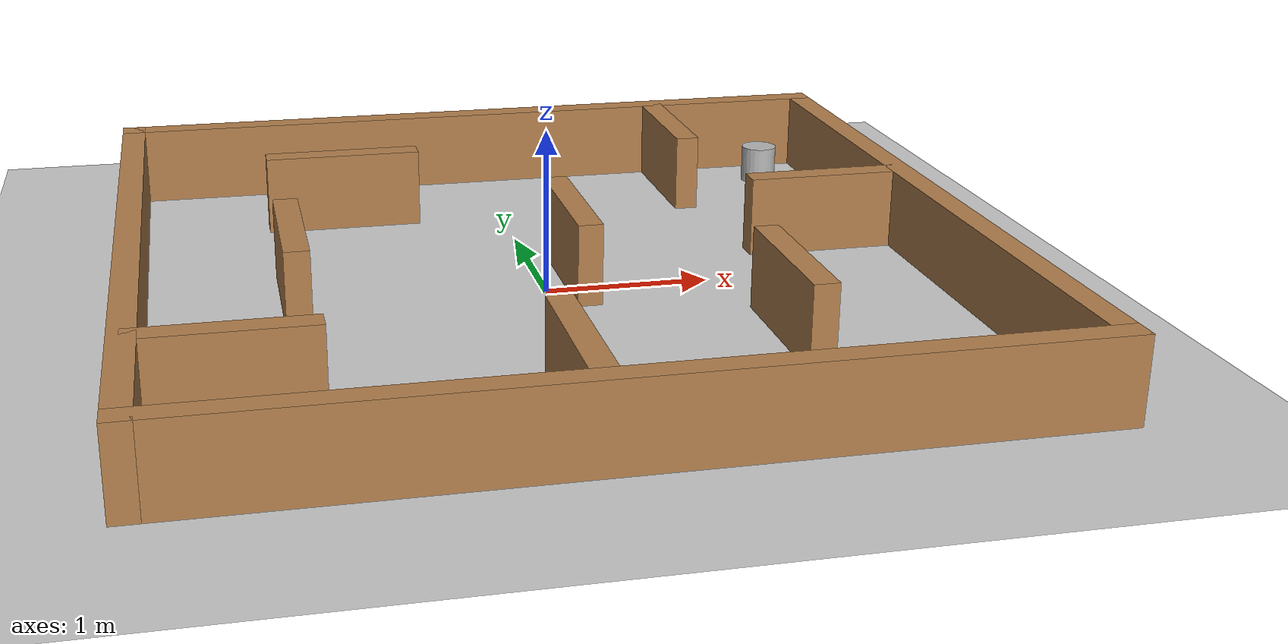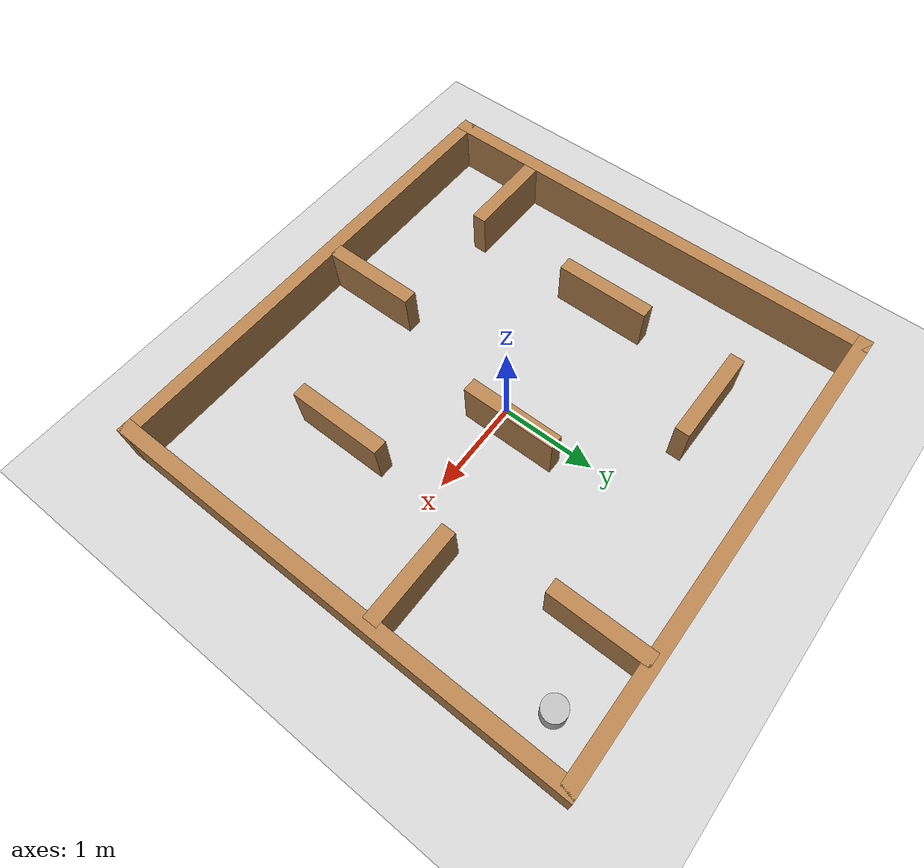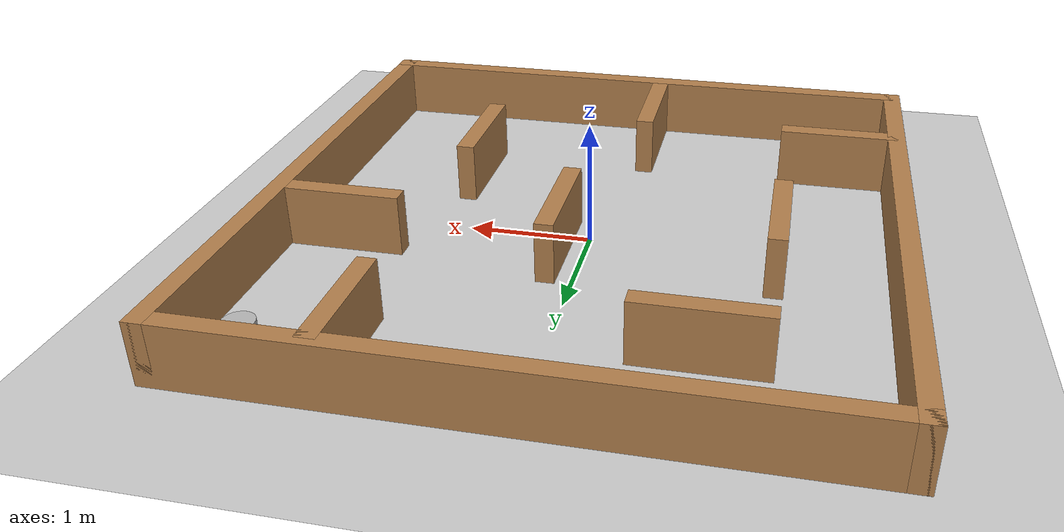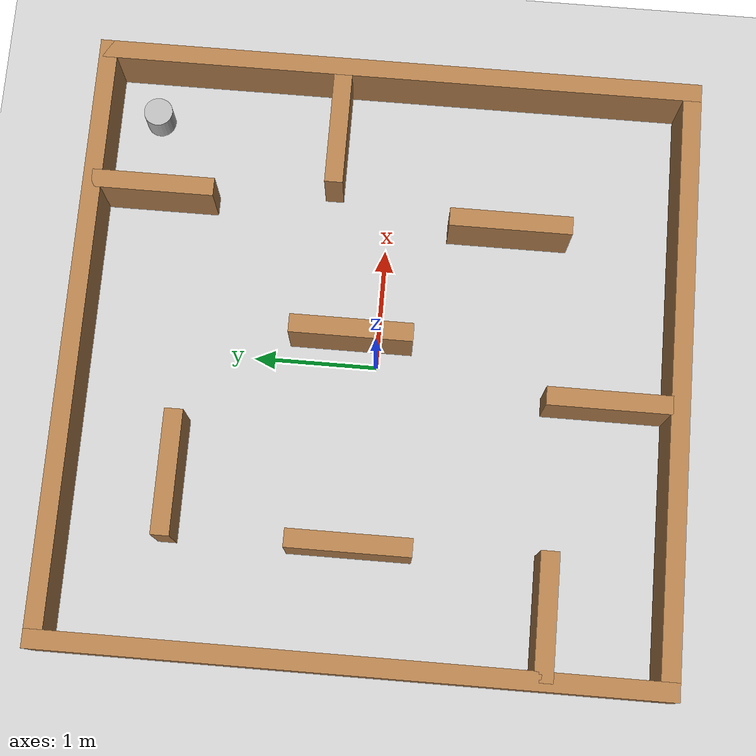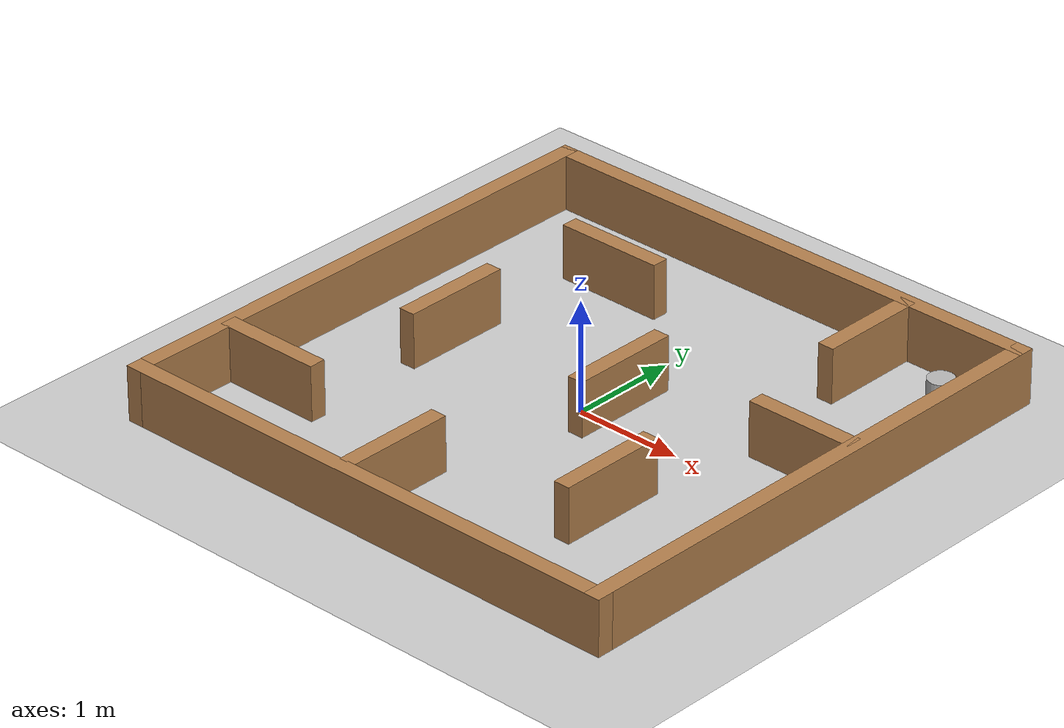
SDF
<sdf version="1.7">
 <world name="default">
  <model name="ground_plane">
   <static>1</static>
   <link name="link">
    <collision name="collision">
     <geometry><plane><normal>0 0 1</normal><size>100 100</size></plane></geometry>
     <surface>
      <contact><collide_bitmask>65535</collide_bitmask></contact>
      <friction><ode><mu>100</mu><mu2>50</mu2></ode></friction>
     </surface>
    </collision>
    <visual name="visual">
     <cast_shadows>0</cast_shadows>
     <geometry><plane><normal>0 0 1</normal><size>100 100</size></plane></geometry>
     <material>
      <script><uri>file://media/materials/scripts/gazebo.material</uri><name>Gazebo/Grey</name></script>
     </material>
    </visual>
   </link>
  </model>
  <model name="turtlebot3_plaza">
   <link name="Wall_0">
    <collision name="Wall_0_Collision">
     <geometry><box><size>5 0.15 0.5</size></box></geometry>
     <pose>0 0 0.25 0 -0 0</pose>
    </collision>
    <visual name="Wall_0_Visual">
     <pose>0 0 0.25 0 -0 0</pose>
     <geometry><box><size>5 0.15 0.5</size></box></geometry>
     <material>
      <script><uri>file://media/materials/scripts/gazebo.material</uri><name>Gazebo/Wood</name></script>
      <ambient>1 1 1 1</ambient>
     </material>
    </visual>
    <pose>-2.425 0 0 0 -0 1.5708</pose>
   </link>
   <link name="Wall_11">
    <collision name="Wall_11_Collision">
     <geometry><box><size>1 0.15 0.5</size></box></geometry>
     <pose>0 0 0.25 0 -0 0</pose>
    </collision>
    <visual name="Wall_11_Visual">
     <pose>0 0 0.25 0 -0 0</pose>
     <geometry><box><size>1 0.15 0.5</size></box></geometry>
     <material>
      <script><uri>file://media/materials/scripts/gazebo.material</uri><name>Gazebo/Wood</name></script>
      <ambient>1 1 1 1</ambient>
     </material>
    </visual>
    <pose>-1.937 -1.467 0 0 -0 0</pose>
   </link>
   <link name="Wall_13">
    <collision name="Wall_13_Collision">
     <geometry><box><size>1 0.15 0.5</size></box></geometry>
     <pose>0 0 0.25 0 -0 0</pose>
    </collision>
    <visual name="Wall_13_Visual">
     <pose>0 0 0.25 0 -0 0</pose>
     <geometry><box><size>1 0.15 0.5</size></box></geometry>
     <material>
      <script><uri>file://media/materials/scripts/gazebo.material</uri><name>Gazebo/Wood</name></script>
      <ambient>1 1 1 1</ambient>
     </material>
    </visual>
    <pose>-0.22 -1.866 0 0 0 -1.5708</pose>
   </link>
   <link name="Wall_15">
    <collision name="Wall_15_Collision">
     <geometry><box><size>1 0.15 0.5</size></box></geometry>
     <pose>0 0 0.25 0 -0 0</pose>
    </collision>
    <visual name="Wall_15_Visual">
     <pose>0 0 0.25 0 -0 0</pose>
     <geometry><box><size>1 0.15 0.5</size></box></geometry>
     <material>
      <script><uri>file://media/materials/scripts/gazebo.material</uri><name>Gazebo/Wood</name></script>
      <ambient>1 1 1 1</ambient>
     </material>
    </visual>
    <pose>1.195 -1.002 0 0 -0 1.5708</pose>
   </link>
   <link name="Wall_17">
    <collision name="Wall_17_Collision">
     <geometry><box><size>1 0.15 0.5</size></box></geometry>
     <pose>0 0 0.25 0 -0 0</pose>
    </collision>
    <visual name="Wall_17_Visual">
     <pose>0 0 0.25 0 -0 0</pose>
     <geometry><box><size>1 0.15 0.5</size></box></geometry>
     <material>
      <script><uri>file://media/materials/scripts/gazebo.material</uri><name>Gazebo/Wood</name></script>
      <ambient>1 1 1 1</ambient>
     </material>
    </visual>
    <pose>1.288 1.93 0 0 0 -1.5708</pose>
   </link>
   <link name="Wall_19">
    <collision name="Wall_19_Collision">
     <geometry><box><size>1 0.15 0.5</size></box></geometry>
     <pose>0 0 0.25 0 -0 0</pose>
    </collision>
    <visual name="Wall_19_Visual">
     <pose>0 0 0.25 0 -0 0</pose>
     <geometry><box><size>1 0.15 0.5</size></box></geometry>
     <material>
      <script><uri>file://media/materials/scripts/gazebo.material</uri><name>Gazebo/Wood</name></script>
      <ambient>1 1 1 1</ambient>
     </material>
    </visual>
    <pose>1.91128 0.4632 0 0 -0 0</pose>
   </link>
   <link name="Wall_2">
    <collision name="Wall_2_Collision">
     <geometry><box><size>5 0.15 0.5</size></box></geometry>
     <pose>0 0 0.25 0 -0 0</pose>
    </collision>
    <visual name="Wall_2_Visual">
     <pose>0 0 0.25 0 -0 0</pose>
     <geometry><box><size>5 0.15 0.5</size></box></geometry>
     <material>
      <script><uri>file://media/materials/scripts/gazebo.material</uri><name>Gazebo/Wood</name></script>
      <ambient>1 1 1 1</ambient>
     </material>
    </visual>
    <pose>0 2.425 0 0 -0 0</pose>
   </link>
   <link name="Wall_21">
    <collision name="Wall_21_Collision">
     <geometry><box><size>1 0.15 0.5</size></box></geometry>
     <pose>0 0 0.25 0 -0 0</pose>
    </collision>
    <visual name="Wall_21_Visual">
     <pose>0 0 0.25 0 -0 0</pose>
     <geometry><box><size>1 0.15 0.5</size></box></geometry>
     <material>
      <script><uri>file://media/materials/scripts/gazebo.material</uri><name>Gazebo/Wood</name></script>
      <ambient>1 1 1 1</ambient>
     </material>
    </visual>
    <pose>0.204 0.215 0 0 0 -1.5708</pose>
   </link>
   <link name="Wall_3">
    <collision name="Wall_3_Collision">
     <geometry><box><size>5 0.15 0.5</size></box></geometry>
     <pose>0 0 0.25 0 -0 0</pose>
    </collision>
    <visual name="Wall_3_Visual">
     <pose>0 0 0.25 0 -0 0</pose>
     <geometry><box><size>5 0.15 0.5</size></box></geometry>
     <material>
      <script><uri>file://media/materials/scripts/gazebo.material</uri><name>Gazebo/Wood</name></script>
      <ambient>1 1 1 1</ambient>
     </material>
    </visual>
    <pose>2.425 0 0 0 0 -1.5708</pose>
   </link>
   <link name="Wall_4">
    <collision name="Wall_4_Collision">
     <geometry><box><size>5 0.15 0.5</size></box></geometry>
     <pose>0 0 0.25 0 -0 0</pose>
    </collision>
    <visual name="Wall_4_Visual">
     <pose>0 0 0.25 0 -0 0</pose>
     <geometry><box><size>5 0.15 0.5</size></box></geometry>
     <material>
      <script><uri>file://media/materials/scripts/gazebo.material</uri><name>Gazebo/Wood</name></script>
      <ambient>1 1 1 1</ambient>
     </material>
    </visual>
    <pose>0 -2.425 0 0 -0 3.14159</pose>
   </link>
   <link name="Wall_7">
    <collision name="Wall_7_Collision">
     <geometry><box><size>1 0.15 0.5</size></box></geometry>
     <pose>0 0 0.25 0 -0 0</pose>
    </collision>
    <visual name="Wall_7_Visual">
     <pose>0 0 0.25 0 -0 0</pose>
     <geometry><box><size>1 0.15 0.5</size></box></geometry>
     <material>
      <script><uri>file://media/materials/scripts/gazebo.material</uri><name>Gazebo/Wood</name></script>
      <ambient>1 1 1 1</ambient>
     </material>
    </visual>
    <pose>-1.064 1.548 0 0 -0 0</pose>
   </link>
   <link name="Wall_9">
    <collision name="Wall_9_Collision">
     <geometry><box><size>1 0.15 0.5</size></box></geometry>
     <pose>0 0 0.25 0 -0 0</pose>
    </collision>
    <visual name="Wall_9_Visual">
     <pose>0 0 0.25 0 -0 0</pose>
     <geometry><box><size>1 0.15 0.5</size></box></geometry>
     <material>
      <script><uri>file://media/materials/scripts/gazebo.material</uri><name>Gazebo/Wood</name></script>
      <ambient>1 1 1 1</ambient>
     </material>
    </visual>
    <pose>-1.502 0.092 0 0 0 -1.5708</pose>
   </link>
   <static>1</static>
  </model>
  <model name="obstacle_1">
   <pose>2 2 0.124999 0 -0 0</pose>
   <link name="link">
    <collision name="collision">
     <geometry><cylinder><radius>0.12</radius><length>0.25</length></cylinder></geometry>
    </collision>
    <visual name="visual">
     <geometry><cylinder><radius>0.12</radius><length>0.25</length></cylinder></geometry>
    </visual>
    <inertial>
     <inertia><ixx>1</ixx><ixy>0</ixy><ixz>0</ixz><iyy>1</iyy><iyz>0</iyz><izz>1</izz></inertia>
     <mass>1</mass>
    </inertial>
   </link>
  </model>
 </world>
</sdf>
